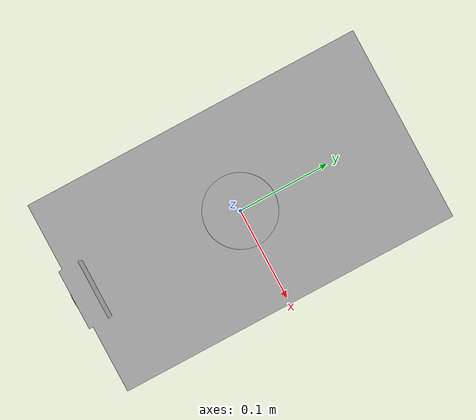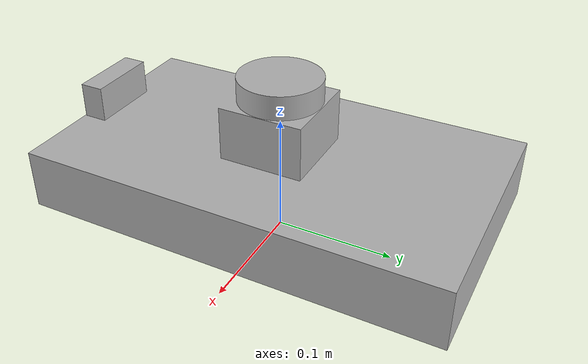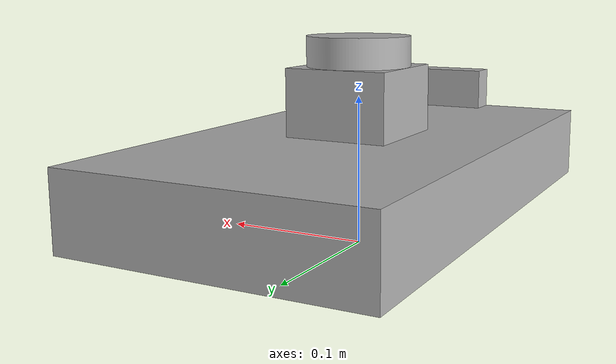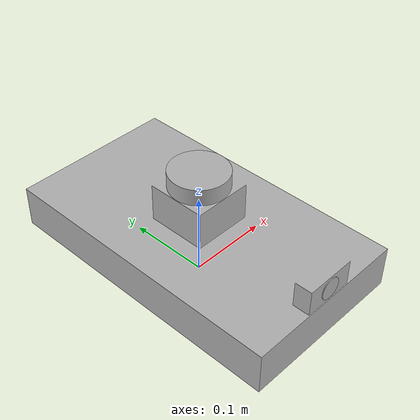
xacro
<?xml version="1.0" ?>
<robot name="oppressor_mk1" xmlns:xacro="http://www.ros.org/wiki/xacro">

<xacro:include filename="$(find oppressor_mk1_description)/urdf/materials.xacro" />
<xacro:include filename="$(find oppressor_mk1_description)/urdf/oppressor_mk1.ros2control" />
<xacro:include filename="$(find oppressor_mk1_description)/urdf/oppressor_mk1.gazebo" />
<link name="base_link">
  <inertial>
    <origin xyz="0.0 -0.0015716757620126503 0.05317150272860374" rpy="0 0 0"/>
    <mass value="29.488525000000006"/>
    <inertia ixx="0.298816" iyy="0.102473" izz="0.381093" ixy="-0.0" iyz="0.001707" ixz="-0.0"/>
  </inertial>
  <visual>
    <origin xyz="0 0 0" rpy="0 0 0"/>
    <geometry>
      <mesh filename="file://$(find oppressor_mk1_description)/meshes/base_link.stl" scale="0.001 0.001 0.001"/>
    </geometry>
    <material name="silver"/>
  </visual>
  <collision>
    <origin xyz="0 0 0" rpy="0 0 0"/>
    <geometry>
      <mesh filename="file://$(find oppressor_mk1_description)/meshes/base_link.stl" scale="0.001 0.001 0.001"/>
    </geometry>
  </collision>
</link>

<link name="lidar_1">
  <inertial>
    <origin xyz="-1.152316533667482e-17 -7.68211022444988e-18 0.010000000000000009" rpy="0 0 0"/>
    <mass value="0.58085711480311"/>
    <inertia ixx="0.00019" iyy="0.00019" izz="0.000342" ixy="-0.0" iyz="0.0" ixz="0.0"/>
  </inertial>
  <visual>
    <origin xyz="-0.0 -0.0 -0.12" rpy="0 0 0"/>
    <geometry>
      <mesh filename="file://$(find oppressor_mk1_description)/meshes/lidar_1.stl" scale="0.001 0.001 0.001"/>
    </geometry>
    <material name="silver"/>
  </visual>
  <collision>
    <origin xyz="-0.0 -0.0 -0.12" rpy="0 0 0"/>
    <geometry>
      <mesh filename="file://$(find oppressor_mk1_description)/meshes/lidar_1.stl" scale="0.001 0.001 0.001"/>
    </geometry>
  </collision>
</link>

<link name="camera_1">
  <inertial>
    <origin xyz="2.261727773485138e-18 -0.0005000000000000837 0.0" rpy="0 0 0"/>
    <mass value="0.0038533597391687806"/>
    <inertia ixx="0.0" iyy="0.0" izz="0.0" ixy="0.0" iyz="-0.0" ixz="-0.0"/>
  </inertial>
  <visual>
    <origin xyz="-0.0 0.174 -0.09" rpy="0 0 0"/>
    <geometry>
      <mesh filename="file://$(find oppressor_mk1_description)/meshes/camera_1.stl" scale="0.001 0.001 0.001"/>
    </geometry>
    <material name="silver"/>
  </visual>
  <collision>
    <origin xyz="-0.0 0.174 -0.09" rpy="0 0 0"/>
    <geometry>
      <mesh filename="file://$(find oppressor_mk1_description)/meshes/camera_1.stl" scale="0.001 0.001 0.001"/>
    </geometry>
  </collision>
</link>

<joint name="Rigid 5" type="fixed">
  <origin xyz="0.0 0.0 0.12" rpy="0 0 0"/>
  <parent link="base_link"/>
  <child link="lidar_1"/>
</joint>

<joint name="Rigid 6" type="fixed">
  <origin xyz="0.0 -0.174 0.09" rpy="0 0 0"/>
  <parent link="base_link"/>
  <child link="camera_1"/>
</joint>

</robot>

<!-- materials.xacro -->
<robot name="oppressor_mk1" xmlns:xacro="http://www.ros.org/wiki/xacro" >

<material name="silver">
  <color rgba="0.700 0.700 0.700 1.000"/>
</material>

</robot>

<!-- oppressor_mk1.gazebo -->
<robot name="oppressor_mk1" xmlns:xacro="http://www.ros.org/wiki/xacro" >

<xacro:property name="body_color" value="Gazebo/Silver" />

<gazebo reference="base_link">
  <material>${body_color}</material>
  <mu1>0.2</mu1>
  <mu2>0.2</mu2>
  <self_collide>true</self_collide>
  <gravity>true</gravity>
</gazebo>

<gazebo reference="lidar_1">
  <material>${body_color}</material>
  <mu1>0.2</mu1>
  <mu2>0.2</mu2>
  <self_collide>true</self_collide>
</gazebo>

<gazebo reference="camera_1">
  <material>${body_color}</material>
  <mu1>0.2</mu1>
  <mu2>0.2</mu2>
  <self_collide>true</self_collide>
</gazebo>

</robot>
